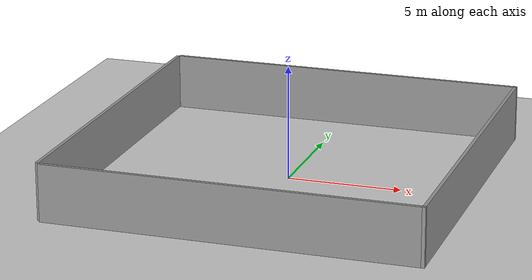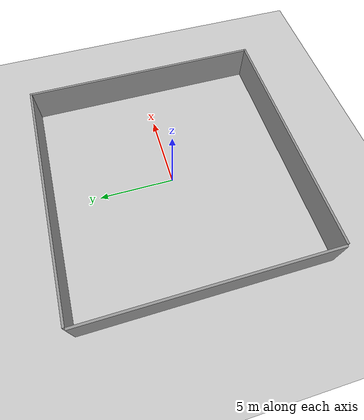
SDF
<sdf version='1.7'>
  <world name='default'>
    <light name='sun' type='directional'>
      <cast_shadows>1</cast_shadows>
      <pose>0 0 10 0 -0 0</pose>
      <diffuse>0.8 0.8 0.8 1</diffuse>
      <specular>0.2 0.2 0.2 1</specular>
      <attenuation>
        <range>1000</range>
        <constant>0.9</constant>
        <linear>0.01</linear>
        <quadratic>0.001</quadratic>
      </attenuation>
      <direction>-0.5 0.1 -0.9</direction>
      <spot>
        <inner_angle>0</inner_angle>
        <outer_angle>0</outer_angle>
        <falloff>0</falloff>
      </spot>
    </light>
    <model name='ground_plane'>
      <static>1</static>
      <link name='link'>
        <collision name='collision'>
          <geometry>
            <plane>
              <normal>0 0 1</normal>
              <size>100 100</size>
            </plane>
          </geometry>
          <surface>
            <contact>
              <collide_bitmask>65535</collide_bitmask>
              <ode/>
            </contact>
            <friction>
              <ode>
                <mu>100</mu>
                <mu2>50</mu2>
              </ode>
              <torsional>
                <ode/>
              </torsional>
            </friction>
            <bounce/>
          </surface>
          <max_contacts>10</max_contacts>
        </collision>
        <visual name='visual'>
          <cast_shadows>0</cast_shadows>
          <geometry>
            <plane>
              <normal>0 0 1</normal>
              <size>100 100</size>
            </plane>
          </geometry>
          <material>
            <script>
              <uri>file://media/materials/scripts/gazebo.material</uri>
              <name>Gazebo/Grey</name>
            </script>
          </material>
        </visual>
        <self_collide>0</self_collide>
        <enable_wind>0</enable_wind>
        <kinematic>0</kinematic>
      </link>
    </model>
    <gravity>0 0 -9.8</gravity>
    <magnetic_field>6e-06 2.3e-05 -4.2e-05</magnetic_field>
    <atmosphere type='adiabatic'/>
    <physics type='ode'>
      <max_step_size>0.001</max_step_size>
      <real_time_factor>1</real_time_factor>
      <real_time_update_rate>1000</real_time_update_rate>
    </physics>
    <scene>
      <ambient>0.4 0.4 0.4 1</ambient>
      <background>0.7 0.7 0.7 1</background>
      <shadows>1</shadows>
    </scene>
    <wind/>
    <spherical_coordinates>
      <surface_model>EARTH_WGS84</surface_model>
      <latitude_deg>0</latitude_deg>
      <longitude_deg>0</longitude_deg>
      <elevation>0</elevation>
      <heading_deg>0</heading_deg>
    </spherical_coordinates>
    <model name='EmptyWorld_8size'>
      <pose>0 0 0 0 -0 0</pose>
      <link name='Wall_2'>
        <collision name='Wall_2_Collision'>
          <geometry>
            <box>
              <size>16 0.15 2.5</size>
            </box>
          </geometry>
          <pose>0 0 1.25 0 -0 0</pose>
          <max_contacts>10</max_contacts>
          <surface>
            <contact>
              <ode/>
            </contact>
            <bounce/>
            <friction>
              <torsional>
                <ode/>
              </torsional>
              <ode/>
            </friction>
          </surface>
        </collision>
        <visual name='Wall_2_Visual'>
          <pose>0 0 1.25 0 -0 0</pose>
          <geometry>
            <box>
              <size>16 0.15 2.5</size>
            </box>
          </geometry>
          <material>
            <script>
              <uri>file://media/materials/scripts/gazebo.material</uri>
              <name>Gazebo/Grey</name>
            </script>
            <ambient>1 1 1 1</ambient>
          </material>
          <meta>
            <layer>0</layer>
          </meta>
        </visual>
        <pose>-8.075 -0 0 0 -0 1.5708</pose>
        <self_collide>0</self_collide>
        <enable_wind>0</enable_wind>
        <kinematic>0</kinematic>
      </link>
      <link name='Wall_4'>
        <collision name='Wall_4_Collision'>
          <geometry>
            <box>
              <size>16 0.15 2.5</size>
            </box>
          </geometry>
          <pose>0 0 1.25 0 -0 0</pose>
          <max_contacts>10</max_contacts>
          <surface>
            <contact>
              <ode/>
            </contact>
            <bounce/>
            <friction>
              <torsional>
                <ode/>
              </torsional>
              <ode/>
            </friction>
          </surface>
        </collision>
        <visual name='Wall_4_Visual'>
          <pose>0 0 1.25 0 -0 0</pose>
          <geometry>
            <box>
              <size>16 0.15 2.5</size>
            </box>
          </geometry>
          <material>
            <script>
              <uri>file://media/materials/scripts/gazebo.material</uri>
              <name>Gazebo/Grey</name>
            </script>
            <ambient>1 1 1 1</ambient>
          </material>
          <meta>
            <layer>0</layer>
          </meta>
        </visual>
        <pose>-0 -8.075 0 0 -0 0</pose>
        <self_collide>0</self_collide>
        <enable_wind>0</enable_wind>
        <kinematic>0</kinematic>
      </link>
      <link name='Wall_5'>
        <collision name='Wall_5_Collision'>
          <geometry>
            <box>
              <size>0.15 0.15 2.5</size>
            </box>
          </geometry>
          <pose>0 0 1.25 0 -0 0</pose>
          <max_contacts>10</max_contacts>
          <surface>
            <contact>
              <ode/>
            </contact>
            <bounce/>
            <friction>
              <torsional>
                <ode/>
              </torsional>
              <ode/>
            </friction>
          </surface>
        </collision>
        <visual name='Wall_5_Visual'>
          <pose>0 0 1.25 0 -0 0</pose>
          <geometry>
            <box>
              <size>0.15 0.15 2.5</size>
            </box>
          </geometry>
          <material>
            <script>
              <uri>file://media/materials/scripts/gazebo.material</uri>
              <name>Gazebo/Grey</name>
            </script>
            <ambient>1 1 1 1</ambient>
          </material>
          <meta>
            <layer>0</layer>
          </meta>
        </visual>
        <pose>8.075 -8.075 0 0 -0 0</pose>
        <self_collide>0</self_collide>
        <enable_wind>0</enable_wind>
        <kinematic>0</kinematic>
      </link>
      <link name='Wall_6'>
        <collision name='Wall_6_Collision'>
          <geometry>
            <box>
              <size>16 0.15 2.5</size>
            </box>
          </geometry>
          <pose>0 0 1.25 0 -0 0</pose>
          <max_contacts>10</max_contacts>
          <surface>
            <contact>
              <ode/>
            </contact>
            <bounce/>
            <friction>
              <torsional>
                <ode/>
              </torsional>
              <ode/>
            </friction>
          </surface>
        </collision>
        <visual name='Wall_6_Visual'>
          <pose>0 0 1.25 0 -0 0</pose>
          <geometry>
            <box>
              <size>16 0.15 2.5</size>
            </box>
          </geometry>
          <material>
            <script>
              <uri>file://media/materials/scripts/gazebo.material</uri>
              <name>Gazebo/Grey</name>
            </script>
            <ambient>1 1 1 1</ambient>
          </material>
          <meta>
            <layer>0</layer>
          </meta>
        </visual>
        <pose>8.075 -0 0 0 -0 1.5708</pose>
        <self_collide>0</self_collide>
        <enable_wind>0</enable_wind>
        <kinematic>0</kinematic>
      </link>
      <link name='Wall_7'>
        <collision name='Wall_7_Collision'>
          <geometry>
            <box>
              <size>0.15 0.15 2.5</size>
            </box>
          </geometry>
          <pose>0 0 1.25 0 -0 0</pose>
          <max_contacts>10</max_contacts>
          <surface>
            <contact>
              <ode/>
            </contact>
            <bounce/>
            <friction>
              <torsional>
                <ode/>
              </torsional>
              <ode/>
            </friction>
          </surface>
        </collision>
        <visual name='Wall_7_Visual'>
          <pose>0 0 1.25 0 -0 0</pose>
          <geometry>
            <box>
              <size>0.15 0.15 2.5</size>
            </box>
          </geometry>
          <material>
            <script>
              <uri>file://media/materials/scripts/gazebo.material</uri>
              <name>Gazebo/Grey</name>
            </script>
            <ambient>1 1 1 1</ambient>
          </material>
          <meta>
            <layer>0</layer>
          </meta>
        </visual>
        <pose>8.075 8.075 0 0 -0 0</pose>
        <self_collide>0</self_collide>
        <enable_wind>0</enable_wind>
        <kinematic>0</kinematic>
      </link>
      <link name='Wall_8'>
        <collision name='Wall_8_Collision'>
          <geometry>
            <box>
              <size>16 0.15 2.5</size>
            </box>
          </geometry>
          <pose>0 0 1.25 0 -0 0</pose>
          <max_contacts>10</max_contacts>
          <surface>
            <contact>
              <ode/>
            </contact>
            <bounce/>
            <friction>
              <torsional>
                <ode/>
              </torsional>
              <ode/>
            </friction>
          </surface>
        </collision>
        <visual name='Wall_8_Visual'>
          <pose>0 0 1.25 0 -0 0</pose>
          <geometry>
            <box>
              <size>16 0.15 2.5</size>
            </box>
          </geometry>
          <material>
            <script>
              <uri>file://media/materials/scripts/gazebo.material</uri>
              <name>Gazebo/Grey</name>
            </script>
            <ambient>1 1 1 1</ambient>
          </material>
          <meta>
            <layer>0</layer>
          </meta>
        </visual>
        <pose>-0 8.075 0 0 -0 3.14159</pose>
        <self_collide>0</self_collide>
        <enable_wind>0</enable_wind>
        <kinematic>0</kinematic>
      </link>
      <static>1</static>
    </model>
    <gui fullscreen='0'>
      <camera name='user_camera'>
        <pose>-12.0669 -7.4148 20.1972 0 1.1578 0.232196</pose>
        <view_controller>orbit</view_controller>
        <projection_type>perspective</projection_type>
      </camera>
    </gui>
  </world>
</sdf>
